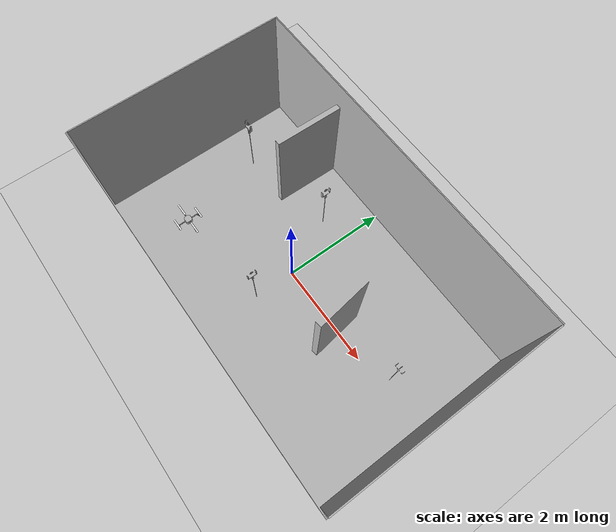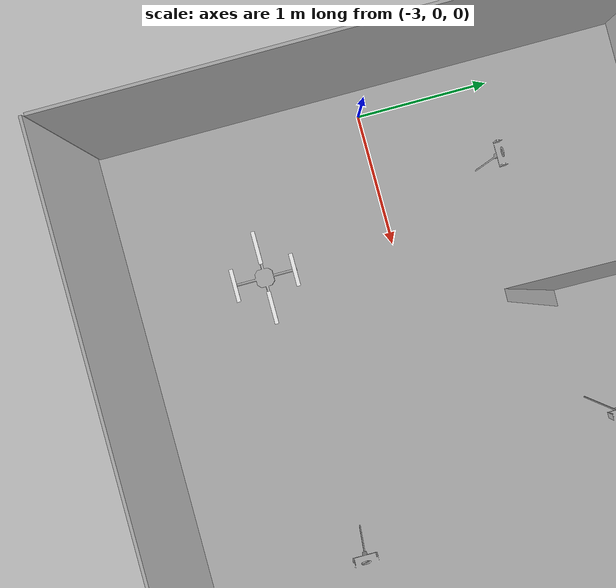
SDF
<sdf version='1.7'>
  <world name='mrsim'>

    <!-- A gazebo links attacher -->
    <plugin name="ros_link_attacher_plugin" filename="libgazebo_ros_link_attacher.so"/>

    <physics type='ode'>
      <max_step_size>0.002000</max_step_size>
      <real_time_factor>1.000000</real_time_factor>
      <real_time_update_rate>500.000000</real_time_update_rate>
      <gravity>0 0 -9.81</gravity>
      <magnetic_field>23.816e-6 -0.41e-6 -39.829e-6</magnetic_field>
    </physics>

    <light name='sun' type='directional'>
      <cast_shadows>1</cast_shadows>
      <pose>0 0 10 0 -0 0</pose>
      <diffuse>0.8 0.8 0.8 1</diffuse>
      <specular>0.2 0.2 0.2 1</specular>
      <attenuation>
        <range>1000</range>
        <constant>0.9</constant>
        <linear>0.01</linear>
        <quadratic>0.001</quadratic>
      </attenuation>
      <direction>-0.5 0.1 -0.9</direction>
      <spot>
        <inner_angle>0</inner_angle>
        <outer_angle>0</outer_angle>
        <falloff>0</falloff>
      </spot>
    </light>

    <model name='ground_plane'>
      <static>1</static>
      <link name='link'>
        <collision name='collision'>
          <geometry>
            <plane>
              <normal>0 0 1</normal>
              <size>100 100</size>
            </plane>
          </geometry>
          <surface>
            <friction>
              <ode>
                <mu>100</mu>
                <mu2>50</mu2>
              </ode>
              <torsional>
                <ode/>
              </torsional>
            </friction>
            <contact>
              <ode/>
            </contact>
            <bounce/>
          </surface>
          <max_contacts>10</max_contacts>
        </collision>
        <visual name='visual'>
          <cast_shadows>0</cast_shadows>
          <geometry>
            <plane>
              <normal>0 0 1</normal>
              <size>100 100</size>
            </plane>
          </geometry>
          <material>
            <script>
              <uri>file://media/materials/scripts/gazebo.material</uri>
              <name>Gazebo/Grey</name>
            </script>
          </material>
        </visual>
        <self_collide>0</self_collide>
        <enable_wind>0</enable_wind>
        <kinematic>0</kinematic>
      </link>
    </model>

    <model name="RAL2024">
      <link name="cage_link">
        <pose>0 0 0 0 0 0</pose>
        <collision name="cage_collision">
          <geometry>
            <mesh>
              <uri>../../robots/meshes/env/LAAS_indoor_rings_gaz.obj</uri>
              <scale>1 1 1</scale>
            </mesh>
          </geometry>
        </collision>
        <visual name="cage">
          <geometry>
            <mesh>
              <uri>../../robots/meshes/env/LAAS_indoor_rings_gaz.obj</uri>
              <scale>1 1 1</scale>
            </mesh>
          </geometry>
          <cast_shadows>false</cast_shadows>
        </visual>
      </link>
      <static>true</static>
    </model>

    <model name='rings'>
      <link name='ring_1'>
        <pose> 0.0 -0.8 1.3 0 0 0.0</pose>
        <inertial>
          <mass>0.05</mass>
          <inertia>
            <ixx>0.00078125</ixx>
            <ixy>0</ixy>
            <ixz>0</ixz>
            <iyy>0.000625</iyy>
            <iyz>0</iyz>
            <izz>0.000625</izz>
          </inertia>
          <pose>0 0 0 0 -0 0</pose>
          <origin xyz='0 0 0'/>
        </inertial>
        <self_collide>0</self_collide>
        <enable_wind>0</enable_wind>
        <kinematic>0</kinematic>
        <gravity>0</gravity>
        <visual name='ring_1'>
          <geometry>
            <mesh>
              <uri>../../../robots/meshes/env/ring_2cm.obj</uri>
              <scale>1 1 1</scale>
            </mesh>
          </geometry>
          <cast_shadows>0</cast_shadows>
          <pose>0 0 0 0 -0 0</pose>
          <transparency>0</transparency>
        </visual>
      </link>
      <link name='ring_2'>
        <pose> 2.6 0.2 1.2 0.0 0 0 1.5708</pose>
        <inertial>
          <mass>0.07</mass>
          <inertia>
            <ixx>0.00078125</ixx>
            <ixy>0</ixy>
            <ixz>0</ixz>
            <iyy>0.000625</iyy>
            <iyz>0</iyz>
            <izz>0.000625</izz>
          </inertia>
          <pose>0 0 0 0 -0 0</pose>
          <origin xyz='0 0 0'/>
        </inertial>
        <self_collide>0</self_collide>
        <enable_wind>0</enable_wind>
        <kinematic>0</kinematic>
        <gravity>0</gravity>
        <visual name='ring_2'>
          <geometry>
            <mesh>
              <uri>../../../robots/meshes/env/ring_2cm.obj</uri>
              <scale>1 1 1</scale>
            </mesh>
          </geometry>
          <cast_shadows>0</cast_shadows>
          <pose>0 0 0 0 -0 0</pose>
          <transparency>0</transparency>
        </visual>
      </link>
      <link name='ring_3'>
        <pose>-0.5 1.1 1.3 0 0 3.1415</pose>
        <inertial>
          <mass>0.02</mass>
          <inertia>
            <ixx>0.00078125</ixx>
            <ixy>0</ixy>
            <ixz>0</ixz>
            <iyy>0.000625</iyy>
            <iyz>0</iyz>
            <izz>0.000625</izz>
          </inertia>
          <pose>0 0 0 0 -0 0</pose>
          <origin xyz='0 0 0'/>
        </inertial>
        <self_collide>0</self_collide>
        <enable_wind>0</enable_wind>
        <kinematic>0</kinematic>
        <gravity>0</gravity>
        <visual name='ring_3'>
          <geometry>
            <mesh>
              <uri>../../../robots/meshes/env/ring_2cm.obj</uri>
              <scale>1 1 1</scale>
            </mesh>
          </geometry>
          <cast_shadows>0</cast_shadows>
          <pose>0 0 0 0 -0 0</pose>
          <transparency>0</transparency>
        </visual>
      </link>
      <link name='ring_4'>
        <pose>-2.37 0.75 1.4 0 0 -1.5708</pose>
        <inertial>
          <mass>0.02</mass>
          <inertia>
            <ixx>0.00078125</ixx>
            <ixy>0</ixy>
            <ixz>0</ixz>
            <iyy>0.000625</iyy>
            <iyz>0</iyz>
            <izz>0.000625</izz>
          </inertia>
          <pose>0 0 0 0 -0 0</pose>
          <origin xyz='0 0 0'/>
        </inertial>
        <self_collide>0</self_collide>
        <enable_wind>0</enable_wind>
        <kinematic>0</kinematic>
        <gravity>0</gravity>
        <visual name='ring_4'>
          <geometry>
            <mesh>
              <uri>../../../robots/meshes/env/ring_2cm.obj</uri>
              <scale>1 1 1</scale>
            </mesh>
          </geometry>
          <cast_shadows>0</cast_shadows>
          <pose>0 0 0 0 -0 0</pose>
          <transparency>0</transparency>
        </visual>
      </link>
    </model>

    <!-- A Quadrotor-->
    <model name="quad">
        <pose>-2.0 -1.0 0.2 0 0 0.0</pose>
        <include>
          <uri>model://mrsim-quadrotor</uri>
          <name>quad</name>
        </include>
    </model>

    <plugin name='optitrack' filename='optitrack-gazebo.so'>
      <hz>1000</hz>
      <port>1509</port>
      <publish>
        <link>quad::base</link>
        <name>quadrotor</name>
      </publish>
    </plugin>

  </world>
</sdf>

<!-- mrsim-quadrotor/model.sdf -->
<sdf version="1.5">
  <model name="mrsim-quadrotor">
    <link name="base">
      <inertial>
        <mass>1.113</mass>
        <inertia>
          <ixx>0.015</ixx><ixy>0</ixy><ixz>0</ixz>
          <iyy>0.015</iyy><iyz>0</iyz>
          <izz>0.007</izz>
        </inertia>
        <pose> 0.01 0.005 0 </pose>
      </inertial>

      <collision name="base">
        <geometry>
          <mesh><uri>../../../../robots/meshes/quadrotor/drone_genom.obj</uri></mesh>
        </geometry>
      </collision>

      <visual name="body">
        <geometry>
          <mesh><uri>../../../../robots/meshes/quadrotor/drone_genom.obj</uri></mesh>
        </geometry>
      </visual>

    </link>

    <include>
      <uri>model://mrsim-rotor</uri>
      <name>rotor-1</name>
      <pose>0.23 0 0 0 0 0</pose>
    </include>
    <joint name="rotor-1" type="revolute">
      <parent>base</parent>
      <child>rotor-1::propeller</child>
      <axis><xyz>0 0 1</xyz></axis>
    </joint>

    <include>
      <uri>model://mrsim-rotor</uri>
      <name>rotor-2</name>
      <pose>0 0.23 0 0 0 0</pose>
    </include>
    <joint name="rotor-2" type="revolute">
      <parent>base</parent>
      <child>rotor-2::propeller</child>
      <axis><xyz>0 0 1</xyz></axis>
    </joint>

    <include>
      <uri>model://mrsim-rotor</uri>
      <name>rotor-3</name>
      <pose>-0.23 0 0 0 0 0</pose>
    </include>
    <joint name="rotor-3" type="revolute">
      <parent>base</parent>
      <child>rotor-3::propeller</child>
      <axis><xyz>0 0 1</xyz></axis>
    </joint>

    <include>
      <uri>model://mrsim-rotor</uri>
      <name>rotor-4</name>
      <pose>0 -0.23 0 0 0 0</pose>
    </include>
    <joint name="rotor-4" type="revolute">
      <parent>base</parent>
      <child>rotor-4::propeller</child>
      <axis><xyz>0 0 1</xyz></axis>
    </joint>

    <plugin name="mrsim" filename="mrsim-gazebo.so">
      <link>base</link>
      <rotors>
        <noise>0.0001</noise>
        <cf>5.9e-4</cf>
        <ct>1e-5</ct>
        <rotor><joint spin="cw">rotor-1</joint></rotor>
        <rotor><joint spin="ccw">rotor-2</joint></rotor>
        <rotor><joint spin="cw">rotor-3</joint></rotor>
        <rotor><joint spin="ccw">rotor-4</joint></rotor>
      </rotors>
    </plugin>

    <plugin name='3dplot' filename='libLinkPlot3DPlugin.so'>
      <frequency>100</frequency>
      <plot>
        <link>base</link>
        <pose>0.0 0.0 0.0 0 0 0</pose> <!-- perche: 0.3535534483629909 0.3535534483629909 -0.0884 0 0 0 -->
        <material>Gazebo/Blue</material>
      </plot>
    </plugin>

  </model>
</sdf>

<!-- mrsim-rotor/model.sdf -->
<sdf version="1.5">
  <model name="mrsim-rotor">
    <link name="propeller">
      <gravity>0</gravity>
      <inertial>
        <mass>0.036</mass>
        <inertia>
          <ixx>4e-5</ixx><ixy>0</ixy><ixz>0</ixz>
          <iyy>4e-5</iyy><iyz>0</iyz>
          <izz>8e-5</izz>
        </inertia>
      </inertial>

      <collision name="collision">
        <pose>0 0 0.04 0 0 0</pose>
        <geometry>
          <cylinder><radius>0.127</radius><length>0.002</length></cylinder>
        </geometry>
      </collision>

      <visual name="motor">
        <pose>0 0 0.015 0 0 0</pose>
        <geometry>
          <cylinder><radius>0.015</radius><length>0.03</length></cylinder>
        </geometry>
        <material>
          <ambient>0.1 0.1 0.1 1</ambient>
          <diffuse>1.0 1.0 1.0 1</diffuse>
        </material>
      </visual>

      <visual name="axle">
        <pose>0 0 0.035 0 0 0</pose>
        <geometry>
          <cylinder><radius>0.002</radius><length>0.01</length></cylinder>
        </geometry>
        <material>
          <ambient>0.1 0.1 0.1 1</ambient>
          <diffuse>1.0 1.0 1.0 1</diffuse>
        </material>
      </visual>

      <visual name="blade">
        <pose>0 0 0.04 0 0 0</pose>
        <geometry>
          <box><size>0.25 0.03 0.002</size></box>
        </geometry>
        <material>
          <ambient>0.1 0.1 0.1 1</ambient>
          <diffuse>1.0 1.0 1.0 1</diffuse>
        </material>
      </visual>
    </link>
  </model>
</sdf>
